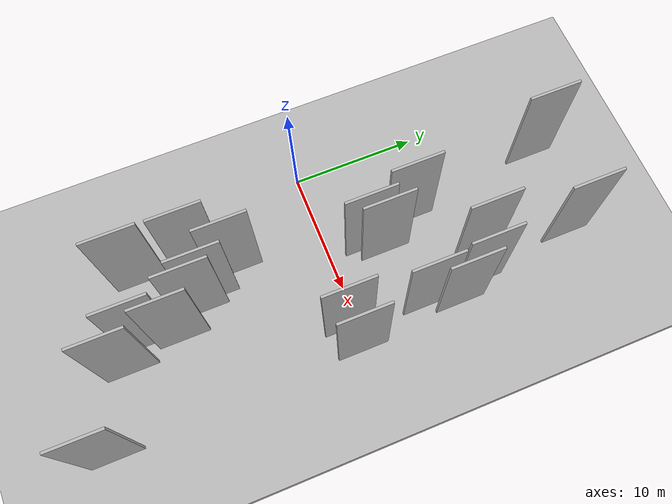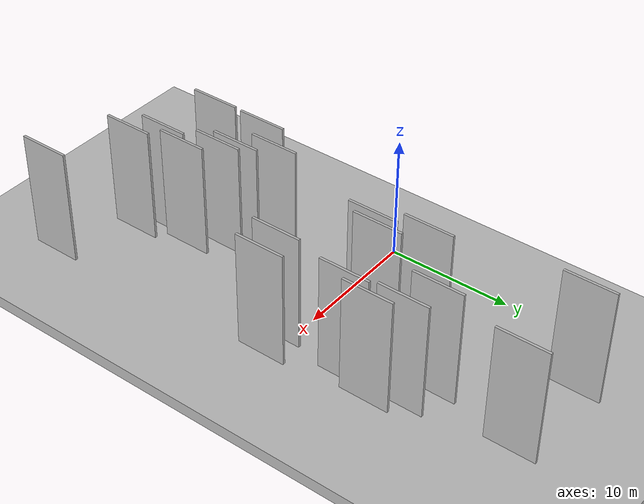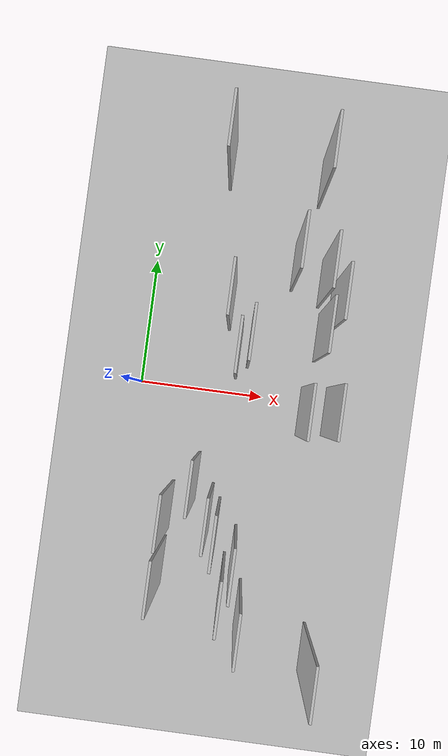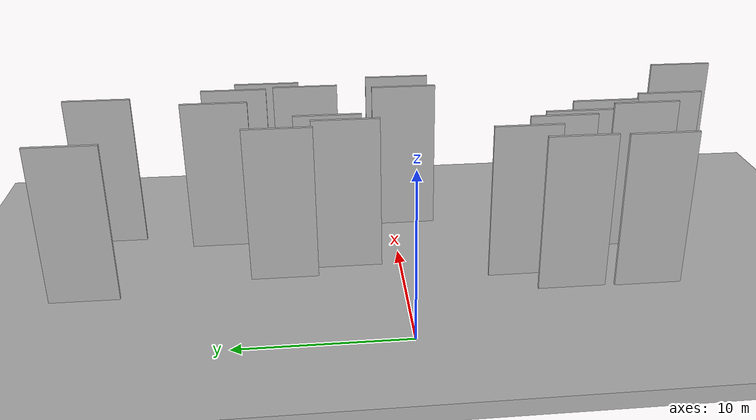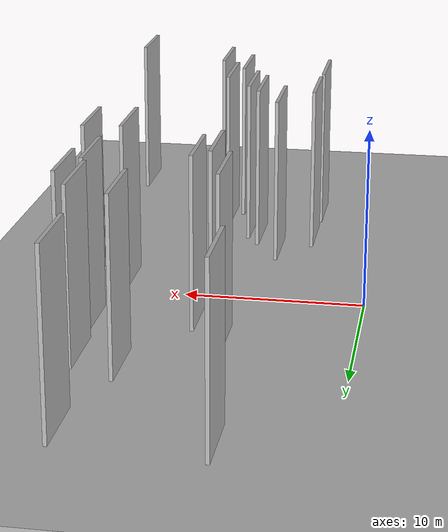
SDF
<?xml version="1.0" encoding="utf-8"?>

<sdf version="1.6">

   <world name="default">

      <gui fullscreen="0">

         <camera name="user_camera">

            <pose>-15 0 4.57585 0 0 0</pose>

            <view_controller>orbit</view_controller>

         </camera>

      </gui>

      <scene>

         <sky>

           <clouds>

             <speed>12</speed>

           </clouds>

         </sky>

         <ambient>0.4 0.4 0.4 1</ambient>

         <background>0.7 0.7 0.7 1</background>

         <shadows>1</shadows>

      </scene>

      <gravity>0 0 -9.8066</gravity>

      <magnetic_field>6e-06 2.3e-05 -4.2e-05</magnetic_field>

      <physics default="0" name="default_physics" type="ode">

         <ode>

            <solver>

               <type>quick</type>

               <iters>10</iters>

               <sor>1.0</sor>

               <use_dynamic_moi_rescaling>0</use_dynamic_moi_rescaling>

            </solver>

            <constraints>

               <cfm>0</cfm>

               <erp>0.2</erp>

               <contact_max_correcting_vel>100</contact_max_correcting_vel>

               <contact_surface_layer>0.001</contact_surface_layer>

            </constraints>

         </ode>

         <max_step_size>0.004</max_step_size>

         <real_time_factor>1</real_time_factor>

         <real_time_update_rate>250</real_time_update_rate>

      </physics>

      <light name="sun" type="directional">

         <cast_shadows>1</cast_shadows>

         <pose>0 0 10 0 0 0</pose>

         <diffuse>0.8 0.8 0.8 1</diffuse>

         <specular>0.2 0.2 0.2 1</specular>

         <attenuation>

            <range>1000</range>

            <constant>0.9</constant>

            <linear>0.01</linear>

            <quadratic>0.001</quadratic>

         </attenuation>

         <direction>-0.5 0.1 -0.9</direction>

      </light>

      <include>

         <name>ground_plane_1</name>

         <uri>model://HANNAS_ground_plane</uri>

         <pose>0 0 0  0 0 0</pose>

      </include>

      <include>

         <name>ground_plane_2</name>

         <uri>model://HANNAS_ground_plane</uri>

         <pose>100 0 0  0 0 0</pose>

      </include>

      <model name="HANNAS_wall_1">

         <static>1</static>

         <pose frame="">5.1534 18.4718 0.0 0.000000 0.000000 1.570796</pose>

         <link name="link">

            <pose frame="">0 0 5.00 0 0 0</pose>

            <collision name="collision">

               <geometry>

                  <box>

                     <size>4.00 0.2 10.00</size>

                  </box>

               </geometry>

               <max_contacts>10</max_contacts>

               <surface>

                  <contact>

                     <ode/>

                  </contact>

                  <bounce/>

                  <friction>

                     <torsional>

                        <ode/>

                     </torsional>

                     <ode/>

                  </friction>

               </surface>

            </collision>

            <visual name="visual">

               <cast_shadows>0</cast_shadows>

               <geometry>

                  <box>

                     <size>4.00 0.2 10.00</size>

                  </box>

               </geometry>

               <material>

                  <script>

                     <uri>model://HANNAS_wall/materials/scripts</uri>

                     <uri>model://HANNAS_wall/materials/textures</uri>

                     <name>vrc/HANNAS_wall</name>

                  </script>

               </material>

            </visual>

            <self_collide>0</self_collide>

            <enable_wind>0</enable_wind>

            <kinematic>0</kinematic>

         </link>

      </model>

      <model name="HANNAS_wall_2">

         <static>1</static>

         <pose frame="">15.2676 -0.4548 0.0 0.000000 0.000000 1.570796</pose>

         <link name="link">

            <pose frame="">0 0 5.00 0 0 0</pose>

            <collision name="collision">

               <geometry>

                  <box>

                     <size>4.00 0.2 10.00</size>

                  </box>

               </geometry>

               <max_contacts>10</max_contacts>

               <surface>

                  <contact>

                     <ode/>

                  </contact>

                  <bounce/>

                  <friction>

                     <torsional>

                        <ode/>

                     </torsional>

                     <ode/>

                  </friction>

               </surface>

            </collision>

            <visual name="visual">

               <cast_shadows>0</cast_shadows>

               <geometry>

                  <box>

                     <size>4.00 0.2 10.00</size>

                  </box>

               </geometry>

               <material>

                  <script>

                     <uri>model://HANNAS_wall/materials/scripts</uri>

                     <uri>model://HANNAS_wall/materials/textures</uri>

                     <name>vrc/HANNAS_wall</name>

                  </script>

               </material>

            </visual>

            <self_collide>0</self_collide>

            <enable_wind>0</enable_wind>

            <kinematic>0</kinematic>

         </link>

      </model>

      <model name="HANNAS_wall_3">

         <static>1</static>

         <pose frame="">8.6991 -14.9369 0.0 0.000000 0.000000 1.570796</pose>

         <link name="link">

            <pose frame="">0 0 5.00 0 0 0</pose>

            <collision name="collision">

               <geometry>

                  <box>

                     <size>4.00 0.2 10.00</size>

                  </box>

               </geometry>

               <max_contacts>10</max_contacts>

               <surface>

                  <contact>

                     <ode/>

                  </contact>

                  <bounce/>

                  <friction>

                     <torsional>

                        <ode/>

                     </torsional>

                     <ode/>

                  </friction>

               </surface>

            </collision>

            <visual name="visual">

               <cast_shadows>0</cast_shadows>

               <geometry>

                  <box>

                     <size>4.00 0.2 10.00</size>

                  </box>

               </geometry>

               <material>

                  <script>

                     <uri>model://HANNAS_wall/materials/scripts</uri>

                     <uri>model://HANNAS_wall/materials/textures</uri>

                     <name>vrc/HANNAS_wall</name>

                  </script>

               </material>

            </visual>

            <self_collide>0</self_collide>

            <enable_wind>0</enable_wind>

            <kinematic>0</kinematic>

         </link>

      </model>

      <model name="HANNAS_wall_4">

         <static>1</static>

         <pose frame="">15.9560 -19.7768 0.0 0.000000 0.000000 1.570796</pose>

         <link name="link">

            <pose frame="">0 0 5.00 0 0 0</pose>

            <collision name="collision">

               <geometry>

                  <box>

                     <size>4.00 0.2 10.00</size>

                  </box>

               </geometry>

               <max_contacts>10</max_contacts>

               <surface>

                  <contact>

                     <ode/>

                  </contact>

                  <bounce/>

                  <friction>

                     <torsional>

                        <ode/>

                     </torsional>

                     <ode/>

                  </friction>

               </surface>

            </collision>

            <visual name="visual">

               <cast_shadows>0</cast_shadows>

               <geometry>

                  <box>

                     <size>4.00 0.2 10.00</size>

                  </box>

               </geometry>

               <material>

                  <script>

                     <uri>model://HANNAS_wall/materials/scripts</uri>

                     <uri>model://HANNAS_wall/materials/textures</uri>

                     <name>vrc/HANNAS_wall</name>

                  </script>

               </material>

            </visual>

            <self_collide>0</self_collide>

            <enable_wind>0</enable_wind>

            <kinematic>0</kinematic>

         </link>

      </model>

      <model name="HANNAS_wall_5">

         <static>1</static>

         <pose frame="">5.6094 -7.0376 0.0 0.000000 0.000000 1.570796</pose>

         <link name="link">

            <pose frame="">0 0 5.00 0 0 0</pose>

            <collision name="collision">

               <geometry>

                  <box>

                     <size>4.00 0.2 10.00</size>

                  </box>

               </geometry>

               <max_contacts>10</max_contacts>

               <surface>

                  <contact>

                     <ode/>

                  </contact>

                  <bounce/>

                  <friction>

                     <torsional>

                        <ode/>

                     </torsional>

                     <ode/>

                  </friction>

               </surface>

            </collision>

            <visual name="visual">

               <cast_shadows>0</cast_shadows>

               <geometry>

                  <box>

                     <size>4.00 0.2 10.00</size>

                  </box>

               </geometry>

               <material>

                  <script>

                     <uri>model://HANNAS_wall/materials/scripts</uri>

                     <uri>model://HANNAS_wall/materials/textures</uri>

                     <name>vrc/HANNAS_wall</name>

                  </script>

               </material>

            </visual>

            <self_collide>0</self_collide>

            <enable_wind>0</enable_wind>

            <kinematic>0</kinematic>

         </link>

      </model>

      <model name="HANNAS_wall_6">

         <static>1</static>

         <pose frame="">3.7026 -14.2185 0.0 0.000000 0.000000 1.570796</pose>

         <link name="link">

            <pose frame="">0 0 5.00 0 0 0</pose>

            <collision name="collision">

               <geometry>

                  <box>

                     <size>4.00 0.2 10.00</size>

                  </box>

               </geometry>

               <max_contacts>10</max_contacts>

               <surface>

                  <contact>

                     <ode/>

                  </contact>

                  <bounce/>

                  <friction>

                     <torsional>

                        <ode/>

                     </torsional>

                     <ode/>

                  </friction>

               </surface>

            </collision>

            <visual name="visual">

               <cast_shadows>0</cast_shadows>

               <geometry>

                  <box>

                     <size>4.00 0.2 10.00</size>

                  </box>

               </geometry>

               <material>

                  <script>

                     <uri>model://HANNAS_wall/materials/scripts</uri>

                     <uri>model://HANNAS_wall/materials/textures</uri>

                     <name>vrc/HANNAS_wall</name>

                  </script>

               </material>

            </visual>

            <self_collide>0</self_collide>

            <enable_wind>0</enable_wind>

            <kinematic>0</kinematic>

         </link>

      </model>

      <model name="HANNAS_wall_7">

         <static>1</static>

         <pose frame="">13.2112 -0.7088 0.0 0.000000 0.000000 1.570796</pose>

         <link name="link">

            <pose frame="">0 0 5.00 0 0 0</pose>

            <collision name="collision">

               <geometry>

                  <box>

                     <size>4.00 0.2 10.00</size>

                  </box>

               </geometry>

               <max_contacts>10</max_contacts>

               <surface>

                  <contact>

                     <ode/>

                  </contact>

                  <bounce/>

                  <friction>

                     <torsional>

                        <ode/>

                     </torsional>

                     <ode/>

                  </friction>

               </surface>

            </collision>

            <visual name="visual">

               <cast_shadows>0</cast_shadows>

               <geometry>

                  <box>

                     <size>4.00 0.2 10.00</size>

                  </box>

               </geometry>

               <material>

                  <script>

                     <uri>model://HANNAS_wall/materials/scripts</uri>

                     <uri>model://HANNAS_wall/materials/textures</uri>

                     <name>vrc/HANNAS_wall</name>

                  </script>

               </material>

            </visual>

            <self_collide>0</self_collide>

            <enable_wind>0</enable_wind>

            <kinematic>0</kinematic>

         </link>

      </model>

      <model name="HANNAS_wall_8">

         <static>1</static>

         <pose frame="">7.7329 -10.5293 0.0 0.000000 0.000000 1.570796</pose>

         <link name="link">

            <pose frame="">0 0 5.00 0 0 0</pose>

            <collision name="collision">

               <geometry>

                  <box>

                     <size>4.00 0.2 10.00</size>

                  </box>

               </geometry>

               <max_contacts>10</max_contacts>

               <surface>

                  <contact>

                     <ode/>

                  </contact>

                  <bounce/>

                  <friction>

                     <torsional>

                        <ode/>

                     </torsional>

                     <ode/>

                  </friction>

               </surface>

            </collision>

            <visual name="visual">

               <cast_shadows>0</cast_shadows>

               <geometry>

                  <box>

                     <size>4.00 0.2 10.00</size>

                  </box>

               </geometry>

               <material>

                  <script>

                     <uri>model://HANNAS_wall/materials/scripts</uri>

                     <uri>model://HANNAS_wall/materials/textures</uri>

                     <name>vrc/HANNAS_wall</name>

                  </script>

               </material>

            </visual>

            <self_collide>0</self_collide>

            <enable_wind>0</enable_wind>

            <kinematic>0</kinematic>

         </link>

      </model>

      <model name="HANNAS_wall_9">

         <static>1</static>

         <pose frame="">9.3121 -12.5820 0.0 0.000000 0.000000 1.570796</pose>

         <link name="link">

            <pose frame="">0 0 5.00 0 0 0</pose>

            <collision name="collision">

               <geometry>

                  <box>

                     <size>4.00 0.2 10.00</size>

                  </box>

               </geometry>

               <max_contacts>10</max_contacts>

               <surface>

                  <contact>

                     <ode/>

                  </contact>

                  <bounce/>

                  <friction>

                     <torsional>

                        <ode/>

                     </torsional>

                     <ode/>

                  </friction>

               </surface>

            </collision>

            <visual name="visual">

               <cast_shadows>0</cast_shadows>

               <geometry>

                  <box>

                     <size>4.00 0.2 10.00</size>

                  </box>

               </geometry>

               <material>

                  <script>

                     <uri>model://HANNAS_wall/materials/scripts</uri>

                     <uri>model://HANNAS_wall/materials/textures</uri>

                     <name>vrc/HANNAS_wall</name>

                  </script>

               </material>

            </visual>

            <self_collide>0</self_collide>

            <enable_wind>0</enable_wind>

            <kinematic>0</kinematic>

         </link>

      </model>

      <model name="HANNAS_wall_10">

         <static>1</static>

         <pose frame="">14.6211 7.8544 0.0 0.000000 0.000000 1.570796</pose>

         <link name="link">

            <pose frame="">0 0 5.00 0 0 0</pose>

            <collision name="collision">

               <geometry>

                  <box>

                     <size>4.00 0.2 10.00</size>

                  </box>

               </geometry>

               <max_contacts>10</max_contacts>

               <surface>

                  <contact>

                     <ode/>

                  </contact>

                  <bounce/>

                  <friction>

                     <torsional>

                        <ode/>

                     </torsional>

                     <ode/>

                  </friction>

               </surface>

            </collision>

            <visual name="visual">

               <cast_shadows>0</cast_shadows>

               <geometry>

                  <box>

                     <size>4.00 0.2 10.00</size>

                  </box>

               </geometry>

               <material>

                  <script>

                     <uri>model://HANNAS_wall/materials/scripts</uri>

                     <uri>model://HANNAS_wall/materials/textures</uri>

                     <name>vrc/HANNAS_wall</name>

                  </script>

               </material>

            </visual>

            <self_collide>0</self_collide>

            <enable_wind>0</enable_wind>

            <kinematic>0</kinematic>

         </link>

      </model>

      <model name="HANNAS_wall_11">

         <static>1</static>

         <pose frame="">7.6695 3.2093 0.0 0.000000 0.000000 1.570796</pose>

         <link name="link">

            <pose frame="">0 0 5.00 0 0 0</pose>

            <collision name="collision">

               <geometry>

                  <box>

                     <size>4.00 0.2 10.00</size>

                  </box>

               </geometry>

               <max_contacts>10</max_contacts>

               <surface>

                  <contact>

                     <ode/>

                  </contact>

                  <bounce/>

                  <friction>

                     <torsional>

                        <ode/>

                     </torsional>

                     <ode/>

                  </friction>

               </surface>

            </collision>

            <visual name="visual">

               <cast_shadows>0</cast_shadows>

               <geometry>

                  <box>

                     <size>4.00 0.2 10.00</size>

                  </box>

               </geometry>

               <material>

                  <script>

                     <uri>model://HANNAS_wall/materials/scripts</uri>

                     <uri>model://HANNAS_wall/materials/textures</uri>

                     <name>vrc/HANNAS_wall</name>

                  </script>

               </material>

            </visual>

            <self_collide>0</self_collide>

            <enable_wind>0</enable_wind>

            <kinematic>0</kinematic>

         </link>

      </model>

      <model name="HANNAS_wall_12">

         <static>1</static>

         <pose frame="">7.0297 -9.4412 0.0 0.000000 0.000000 1.570796</pose>

         <link name="link">

            <pose frame="">0 0 5.00 0 0 0</pose>

            <collision name="collision">

               <geometry>

                  <box>

                     <size>4.00 0.2 10.00</size>

                  </box>

               </geometry>

               <max_contacts>10</max_contacts>

               <surface>

                  <contact>

                     <ode/>

                  </contact>

                  <bounce/>

                  <friction>

                     <torsional>

                        <ode/>

                     </torsional>

                     <ode/>

                  </friction>

               </surface>

            </collision>

            <visual name="visual">

               <cast_shadows>0</cast_shadows>

               <geometry>

                  <box>

                     <size>4.00 0.2 10.00</size>

                  </box>

               </geometry>

               <material>

                  <script>

                     <uri>model://HANNAS_wall/materials/scripts</uri>

                     <uri>model://HANNAS_wall/materials/textures</uri>

                     <name>vrc/HANNAS_wall</name>

                  </script>

               </material>

            </visual>

            <self_collide>0</self_collide>

            <enable_wind>0</enable_wind>

            <kinematic>0</kinematic>

         </link>

      </model>

      <model name="HANNAS_wall_13">

         <static>1</static>

         <pose frame="">6.6386 7.0832 0.0 0.000000 0.000000 1.570796</pose>

         <link name="link">

            <pose frame="">0 0 5.00 0 0 0</pose>

            <collision name="collision">

               <geometry>

                  <box>

                     <size>4.00 0.2 10.00</size>

                  </box>

               </geometry>

               <max_contacts>10</max_contacts>

               <surface>

                  <contact>

                     <ode/>

                  </contact>

                  <bounce/>

                  <friction>

                     <torsional>

                        <ode/>

                     </torsional>

                     <ode/>

                  </friction>

               </surface>

            </collision>

            <visual name="visual">

               <cast_shadows>0</cast_shadows>

               <geometry>

                  <box>

                     <size>4.00 0.2 10.00</size>

                  </box>

               </geometry>

               <material>

                  <script>

                     <uri>model://HANNAS_wall/materials/scripts</uri>

                     <uri>model://HANNAS_wall/materials/textures</uri>

                     <name>vrc/HANNAS_wall</name>

                  </script>

               </material>

            </visual>

            <self_collide>0</self_collide>

            <enable_wind>0</enable_wind>

            <kinematic>0</kinematic>

         </link>

      </model>

      <model name="HANNAS_wall_14">

         <static>1</static>

         <pose frame="">10.2776 -16.9299 0.0 0.000000 0.000000 1.570796</pose>

         <link name="link">

            <pose frame="">0 0 5.00 0 0 0</pose>

            <collision name="collision">

               <geometry>

                  <box>

                     <size>4.00 0.2 10.00</size>

                  </box>

               </geometry>

               <max_contacts>10</max_contacts>

               <surface>

                  <contact>

                     <ode/>

                  </contact>

                  <bounce/>

                  <friction>

                     <torsional>

                        <ode/>

                     </torsional>

                     <ode/>

                  </friction>

               </surface>

            </collision>

            <visual name="visual">

               <cast_shadows>0</cast_shadows>

               <geometry>

                  <box>

                     <size>4.00 0.2 10.00</size>

                  </box>

               </geometry>

               <material>

                  <script>

                     <uri>model://HANNAS_wall/materials/scripts</uri>

                     <uri>model://HANNAS_wall/materials/textures</uri>

                     <name>vrc/HANNAS_wall</name>

                  </script>

               </material>

            </visual>

            <self_collide>0</self_collide>

            <enable_wind>0</enable_wind>

            <kinematic>0</kinematic>

         </link>

      </model>

      <model name="HANNAS_wall_15">

         <static>1</static>

         <pose frame="">3.7818 -9.6509 0.0 0.000000 0.000000 1.570796</pose>

         <link name="link">

            <pose frame="">0 0 5.00 0 0 0</pose>

            <collision name="collision">

               <geometry>

                  <box>

                     <size>4.00 0.2 10.00</size>

                  </box>

               </geometry>

               <max_contacts>10</max_contacts>

               <surface>

                  <contact>

                     <ode/>

                  </contact>

                  <bounce/>

                  <friction>

                     <torsional>

                        <ode/>

                     </torsional>

                     <ode/>

                  </friction>

               </surface>

            </collision>

            <visual name="visual">

               <cast_shadows>0</cast_shadows>

               <geometry>

                  <box>

                     <size>4.00 0.2 10.00</size>

                  </box>

               </geometry>

               <material>

                  <script>

                     <uri>model://HANNAS_wall/materials/scripts</uri>

                     <uri>model://HANNAS_wall/materials/textures</uri>

                     <name>vrc/HANNAS_wall</name>

                  </script>

               </material>

            </visual>

            <self_collide>0</self_collide>

            <enable_wind>0</enable_wind>

            <kinematic>0</kinematic>

         </link>

      </model>

      <model name="HANNAS_wall_16">

         <static>1</static>

         <pose frame="">12.5027 17.9832 0.0 0.000000 0.000000 1.570796</pose>

         <link name="link">

            <pose frame="">0 0 5.00 0 0 0</pose>

            <collision name="collision">

               <geometry>

                  <box>

                     <size>4.00 0.2 10.00</size>

                  </box>

               </geometry>

               <max_contacts>10</max_contacts>

               <surface>

                  <contact>

                     <ode/>

                  </contact>

                  <bounce/>

                  <friction>

                     <torsional>

                        <ode/>

                     </torsional>

                     <ode/>

                  </friction>

               </surface>

            </collision>

            <visual name="visual">

               <cast_shadows>0</cast_shadows>

               <geometry>

                  <box>

                     <size>4.00 0.2 10.00</size>

                  </box>

               </geometry>

               <material>

                  <script>

                     <uri>model://HANNAS_wall/materials/scripts</uri>

                     <uri>model://HANNAS_wall/materials/textures</uri>

                     <name>vrc/HANNAS_wall</name>

                  </script>

               </material>

            </visual>

            <self_collide>0</self_collide>

            <enable_wind>0</enable_wind>

            <kinematic>0</kinematic>

         </link>

      </model>

      <model name="HANNAS_wall_17">

         <static>1</static>

         <pose frame="">13.8354 5.4456 0.0 0.000000 0.000000 1.570796</pose>

         <link name="link">

            <pose frame="">0 0 5.00 0 0 0</pose>

            <collision name="collision">

               <geometry>

                  <box>

                     <size>4.00 0.2 10.00</size>

                  </box>

               </geometry>

               <max_contacts>10</max_contacts>

               <surface>

                  <contact>

                     <ode/>

                  </contact>

                  <bounce/>

                  <friction>

                     <torsional>

                        <ode/>

                     </torsional>

                     <ode/>

                  </friction>

               </surface>

            </collision>

            <visual name="visual">

               <cast_shadows>0</cast_shadows>

               <geometry>

                  <box>

                     <size>4.00 0.2 10.00</size>

                  </box>

               </geometry>

               <material>

                  <script>

                     <uri>model://HANNAS_wall/materials/scripts</uri>

                     <uri>model://HANNAS_wall/materials/textures</uri>

                     <name>vrc/HANNAS_wall</name>

                  </script>

               </material>

            </visual>

            <self_collide>0</self_collide>

            <enable_wind>0</enable_wind>

            <kinematic>0</kinematic>

         </link>

      </model>

      <model name="HANNAS_wall_18">

         <static>1</static>

         <pose frame="">13.5501 9.8727 0.0 0.000000 0.000000 1.570796</pose>

         <link name="link">

            <pose frame="">0 0 5.00 0 0 0</pose>

            <collision name="collision">

               <geometry>

                  <box>

                     <size>4.00 0.2 10.00</size>

                  </box>

               </geometry>

               <max_contacts>10</max_contacts>

               <surface>

                  <contact>

                     <ode/>

                  </contact>

                  <bounce/>

                  <friction>

                     <torsional>

                        <ode/>

                     </torsional>

                     <ode/>

                  </friction>

               </surface>

            </collision>

            <visual name="visual">

               <cast_shadows>0</cast_shadows>

               <geometry>

                  <box>

                     <size>4.00 0.2 10.00</size>

                  </box>

               </geometry>

               <material>

                  <script>

                     <uri>model://HANNAS_wall/materials/scripts</uri>

                     <uri>model://HANNAS_wall/materials/textures</uri>

                     <name>vrc/HANNAS_wall</name>

                  </script>

               </material>

            </visual>

            <self_collide>0</self_collide>

            <enable_wind>0</enable_wind>

            <kinematic>0</kinematic>

         </link>

      </model>

      <model name="HANNAS_wall_19">

         <static>1</static>

         <pose frame="">11.2044 10.9223 0.0 0.000000 0.000000 1.570796</pose>

         <link name="link">

            <pose frame="">0 0 5.00 0 0 0</pose>

            <collision name="collision">

               <geometry>

                  <box>

                     <size>4.00 0.2 10.00</size>

                  </box>

               </geometry>

               <max_contacts>10</max_contacts>

               <surface>

                  <contact>

                     <ode/>

                  </contact>

                  <bounce/>

                  <friction>

                     <torsional>

                        <ode/>

                     </torsional>

                     <ode/>

                  </friction>

               </surface>

            </collision>

            <visual name="visual">

               <cast_shadows>0</cast_shadows>

               <geometry>

                  <box>

                     <size>4.00 0.2 10.00</size>

                  </box>

               </geometry>

               <material>

                  <script>

                     <uri>model://HANNAS_wall/materials/scripts</uri>

                     <uri>model://HANNAS_wall/materials/textures</uri>

                     <name>vrc/HANNAS_wall</name>

                  </script>

               </material>

            </visual>

            <self_collide>0</self_collide>

            <enable_wind>0</enable_wind>

            <kinematic>0</kinematic>

         </link>

      </model>

      <model name="HANNAS_wall_20">

         <static>1</static>

         <pose frame="">8.4948 4.2116 0.0 0.000000 0.000000 1.570796</pose>

         <link name="link">

            <pose frame="">0 0 5.00 0 0 0</pose>

            <collision name="collision">

               <geometry>

                  <box>

                     <size>4.00 0.2 10.00</size>

                  </box>

               </geometry>

               <max_contacts>10</max_contacts>

               <surface>

                  <contact>

                     <ode/>

                  </contact>

                  <bounce/>

                  <friction>

                     <torsional>

                        <ode/>

                     </torsional>

                     <ode/>

                  </friction>

               </surface>

            </collision>

            <visual name="visual">

               <cast_shadows>0</cast_shadows>

               <geometry>

                  <box>

                     <size>4.00 0.2 10.00</size>

                  </box>

               </geometry>

               <material>

                  <script>

                     <uri>model://HANNAS_wall/materials/scripts</uri>

                     <uri>model://HANNAS_wall/materials/textures</uri>

                     <name>vrc/HANNAS_wall</name>

                  </script>

               </material>

            </visual>

            <self_collide>0</self_collide>

            <enable_wind>0</enable_wind>

            <kinematic>0</kinematic>

         </link>

      </model>

   </world>

</sdf>

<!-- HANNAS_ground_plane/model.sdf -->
<sdf version="1.4">
<model name="HANNAS_ground_plane">
  <static>true</static>
    <link name="link">
      <collision name="collision">
        <geometry>
          <plane>
            <normal>0 0 1</normal>
            <size>1000 1000</size>
          </plane>
        </geometry>
        <surface>
          <friction>
            <ode>
              <mu>100</mu>
              <mu2>50</mu2>
            </ode>
          </friction>
        </surface>
      </collision>
      <visual name="visual">
        <cast_shadows>false</cast_shadows>
        <geometry>
          <plane>
            <normal>0 0 1</normal>
            <size>1000 1000</size>
          </plane>
        </geometry>
        <material>
          <script>
            <uri>model://HANNAS_ground_plane/materials/scripts/HANNAS_ground_plane.material</uri>
	    <uri>model://HANNAS_ground_plane/materials/textures</uri>
            <name>HANNASGroundPlane/Image</name>
          </script>
        </material>
      </visual>
    </link>
  </model>
</sdf>
